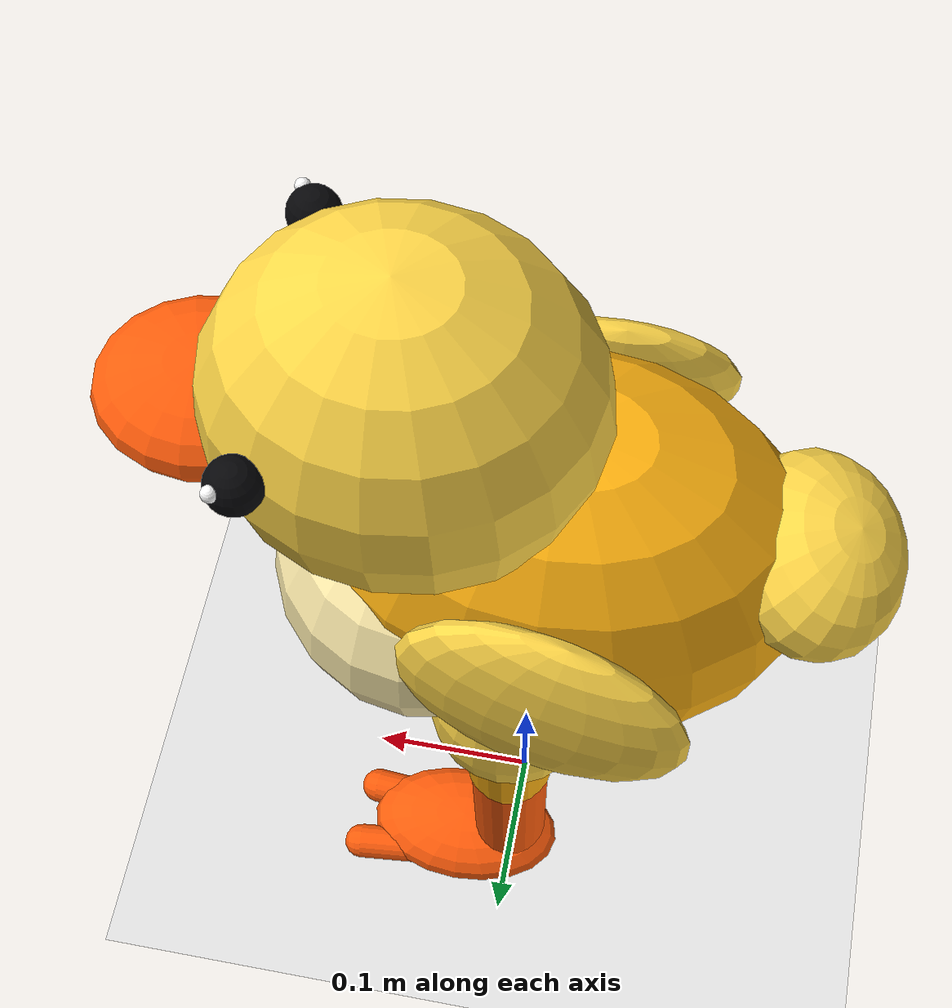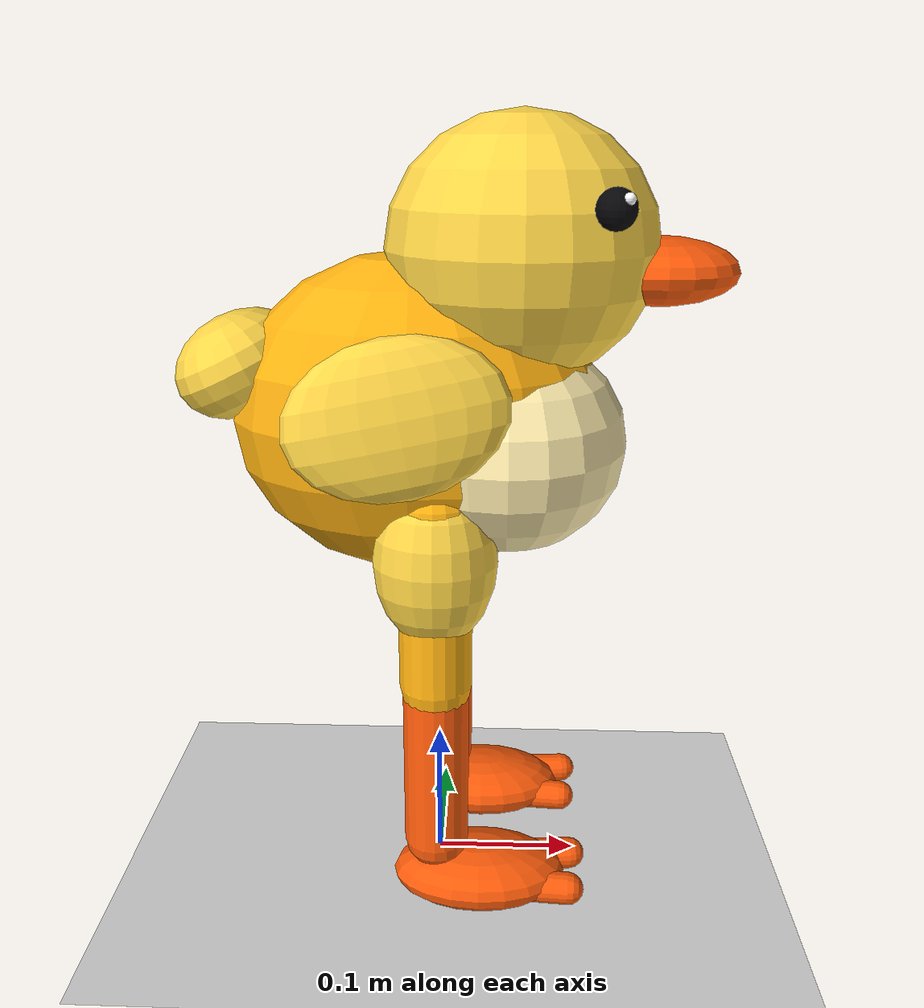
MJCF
<mujoco model="mini_duck_lite_v0_1">
  <compiler angle="radian" autolimits="true" inertiafromgeom="true"/>
  <option timestep="0.002" gravity="0 0 -9.81" integrator="implicitfast" cone="elliptic"/>

  <visual>
    <global azimuth="130" elevation="-16" offwidth="960" offheight="720"/>
    <quality shadowsize="4096"/>
    <headlight ambient="0.45 0.45 0.45" diffuse="0.65 0.65 0.65" specular="0.15 0.15 0.15"/>
    <rgba haze="0.85 0.90 0.96 1"/>
  </visual>

  <default>
    <joint type="hinge" limited="true" damping="0.25" armature="0.002"/>
    <geom condim="3" friction="0.9 0.03 0.001" solref="0.004 1"/>
    <position ctrllimited="true" forcelimited="true" forcerange="-4 4" kp="35" kv="2.5"/>
  </default>

  <asset>
    <texture name="sky_tex" type="skybox" builtin="gradient" width="512" height="3072" rgb1="0.72 0.86 0.98" rgb2="0.97 0.98 1.00"/>
    <texture name="floor_tex" type="2d" builtin="checker" width="256" height="256" rgb1="0.82 0.82 0.82" rgb2="0.94 0.94 0.94"/>
    <material name="floor_mat" texture="floor_tex" texrepeat="6 6" reflectance="0.01"/>
    <material name="duck_yellow" rgba="1.00 0.70 0.06 1"/>
    <material name="duck_light" rgba="1.00 0.84 0.28 1"/>
    <material name="belly_cream" rgba="1.00 0.93 0.68 1"/>
    <material name="joint_dark" rgba="0.20 0.22 0.25 1"/>
    <material name="foot_orange" rgba="1.00 0.36 0.04 1"/>
    <material name="eye_black" rgba="0.025 0.025 0.035 1"/>
    <material name="eye_highlight" rgba="1 1 1 1"/>
  </asset>

  <worldbody>
    <light name="key" pos="1 -1 2" dir="-1 1 -2" directional="true" diffuse="0.85 0.82 0.76" castshadow="true"/>
    <geom name="floor" type="plane" size="3 3 0.05" material="floor_mat"/>
    <camera name="overview" mode="fixed" pos="0.72 -0.81 0.50" xyaxes="0.74 0.67 0 -0.23 0.25 0.94"/>

    <body name="base" pos="0 0 0.34">
      <freejoint name="root"/>
      <geom name="body_shell" type="ellipsoid" pos="-0.015 0 0" size="0.12 0.086 0.105" mass="0.28" material="duck_yellow"/>
      <geom name="belly" type="ellipsoid" pos="0.045 0 -0.018" size="0.078 0.087 0.072" mass="0.025" material="belly_cream" contype="0" conaffinity="0"/>
      <geom name="head" type="ellipsoid" pos="0.052 0 0.105" size="0.086 0.078 0.082" mass="0.075" material="duck_light"/>
      <geom name="beak" type="ellipsoid" pos="0.137 0 0.092" size="0.050 0.044 0.021" mass="0.018" material="foot_orange"/>
      <geom name="left_eye" type="sphere" pos="0.102 0.064 0.133" size="0.012" mass="0.001" material="eye_black" contype="0" conaffinity="0"/>
      <geom name="right_eye" type="sphere" pos="0.102 -0.064 0.133" size="0.012" mass="0.001" material="eye_black" contype="0" conaffinity="0"/>
      <geom name="left_eye_highlight" type="sphere" pos="0.108 0.072 0.139" size="0.0035" mass="0.0001" material="eye_highlight" contype="0" conaffinity="0"/>
      <geom name="right_eye_highlight" type="sphere" pos="0.108 -0.072 0.139" size="0.0035" mass="0.0001" material="eye_highlight" contype="0" conaffinity="0"/>
      <geom name="left_wing" type="ellipsoid" pos="-0.020 0.086 0.018" euler="0.15 -0.20 -0.12" size="0.068 0.017 0.048" mass="0.014" material="duck_light" contype="0" conaffinity="0"/>
      <geom name="right_wing" type="ellipsoid" pos="-0.020 -0.086 0.018" euler="-0.15 -0.20 0.12" size="0.068 0.017 0.048" mass="0.014" material="duck_light" contype="0" conaffinity="0"/>
      <geom name="tail" type="ellipsoid" pos="-0.128 0 0.032" euler="0 -0.45 0" size="0.044 0.050 0.033" mass="0.014" material="duck_light" contype="0" conaffinity="0"/>
      <site name="imu" pos="0 0 0.025" size="0.008" rgba="0.1 0.6 1 1"/>

      <body name="left_hip_yaw_link" pos="0 0.055 -0.05">
        <joint name="left_hip_yaw" axis="0 0 1" range="-0.60 0.60"/>
        <geom type="sphere" size="0.028" mass="0.018" material="duck_yellow"/>
        <body name="left_hip_roll_link">
          <joint name="left_hip_roll" axis="1 0 0" range="-0.45 0.45"/>
          <geom type="sphere" size="0.026" mass="0.016" material="duck_yellow"/>
          <body name="left_upper_leg">
            <joint name="left_hip_pitch" axis="0 1 0" range="-1.00 0.80"/>
            <geom type="ellipsoid" pos="0 0 -0.032" size="0.040 0.036 0.058" mass="0.001" material="duck_light" contype="0" conaffinity="0"/>
            <geom type="capsule" fromto="0 0 0 0 0 -0.12" size="0.024" mass="0.085" material="duck_yellow"/>
            <body name="left_lower_leg" pos="0 0 -0.12">
              <joint name="left_knee_pitch" axis="0 1 0" range="-0.10 1.45"/>
              <geom type="capsule" fromto="0 0 0 0 0 -0.12" size="0.022" mass="0.075" material="foot_orange"/>
              <body name="left_foot" pos="0 0 -0.12">
                <joint name="left_ankle_pitch" axis="0 1 0" range="-0.70 0.70"/>
                <geom name="left_foot_geom" type="box" pos="0.035 0 -0.025" size="0.065 0.038 0.025" mass="0.045" rgba="0 0 0 0"/>
                <geom name="left_foot_palm" type="ellipsoid" pos="0.030 0 -0.028" size="0.060 0.037 0.022" mass="0.008" material="foot_orange" contype="0" conaffinity="0"/>
                <geom name="left_toe_outer" type="capsule" fromto="0.040 0.018 -0.031 0.095 0.023 -0.031" size="0.011" mass="0.001" material="foot_orange" contype="0" conaffinity="0"/>
                <geom name="left_toe_inner" type="capsule" fromto="0.040 -0.012 -0.031 0.092 -0.016 -0.031" size="0.011" mass="0.001" material="foot_orange" contype="0" conaffinity="0"/>
                <site name="left_foot_site" type="box" pos="0.035 0 -0.050" size="0.060 0.034 0.002" rgba="0 0 0 0"/>
              </body>
            </body>
          </body>
        </body>
      </body>

      <body name="right_hip_yaw_link" pos="0 -0.055 -0.05">
        <joint name="right_hip_yaw" axis="0 0 1" range="-0.60 0.60"/>
        <geom type="sphere" size="0.028" mass="0.018" material="duck_yellow"/>
        <body name="right_hip_roll_link">
          <joint name="right_hip_roll" axis="1 0 0" range="-0.45 0.45"/>
          <geom type="sphere" size="0.026" mass="0.016" material="duck_yellow"/>
          <body name="right_upper_leg">
            <joint name="right_hip_pitch" axis="0 1 0" range="-1.00 0.80"/>
            <geom type="ellipsoid" pos="0 0 -0.032" size="0.040 0.036 0.058" mass="0.001" material="duck_light" contype="0" conaffinity="0"/>
            <geom type="capsule" fromto="0 0 0 0 0 -0.12" size="0.024" mass="0.085" material="duck_yellow"/>
            <body name="right_lower_leg" pos="0 0 -0.12">
              <joint name="right_knee_pitch" axis="0 1 0" range="-0.10 1.45"/>
              <geom type="capsule" fromto="0 0 0 0 0 -0.12" size="0.022" mass="0.075" material="foot_orange"/>
              <body name="right_foot" pos="0 0 -0.12">
                <joint name="right_ankle_pitch" axis="0 1 0" range="-0.70 0.70"/>
                <geom name="right_foot_geom" type="box" pos="0.035 0 -0.025" size="0.065 0.038 0.025" mass="0.045" rgba="0 0 0 0"/>
                <geom name="right_foot_palm" type="ellipsoid" pos="0.030 0 -0.028" size="0.060 0.037 0.022" mass="0.008" material="foot_orange" contype="0" conaffinity="0"/>
                <geom name="right_toe_outer" type="capsule" fromto="0.040 0.018 -0.031 0.095 0.023 -0.031" size="0.011" mass="0.001" material="foot_orange" contype="0" conaffinity="0"/>
                <geom name="right_toe_inner" type="capsule" fromto="0.040 -0.012 -0.031 0.092 -0.016 -0.031" size="0.011" mass="0.001" material="foot_orange" contype="0" conaffinity="0"/>
                <site name="right_foot_site" type="box" pos="0.035 0 -0.050" size="0.060 0.034 0.002" rgba="0 0 0 0"/>
              </body>
            </body>
          </body>
        </body>
      </body>
    </body>
  </worldbody>

  <equality>
    <weld name="debug_tether" body1="base" active="false"/>
  </equality>

  <actuator>
    <position name="left_hip_yaw_act" joint="left_hip_yaw" ctrlrange="-0.60 0.60"/>
    <position name="left_hip_roll_act" joint="left_hip_roll" ctrlrange="-0.45 0.45"/>
    <position name="left_hip_pitch_act" joint="left_hip_pitch" ctrlrange="-1.00 0.80"/>
    <position name="left_knee_pitch_act" joint="left_knee_pitch" ctrlrange="-0.10 1.45"/>
    <position name="left_ankle_pitch_act" joint="left_ankle_pitch" ctrlrange="-0.70 0.70"/>
    <position name="right_hip_yaw_act" joint="right_hip_yaw" ctrlrange="-0.60 0.60"/>
    <position name="right_hip_roll_act" joint="right_hip_roll" ctrlrange="-0.45 0.45"/>
    <position name="right_hip_pitch_act" joint="right_hip_pitch" ctrlrange="-1.00 0.80"/>
    <position name="right_knee_pitch_act" joint="right_knee_pitch" ctrlrange="-0.10 1.45"/>
    <position name="right_ankle_pitch_act" joint="right_ankle_pitch" ctrlrange="-0.70 0.70"/>
  </actuator>

  <sensor>
    <gyro name="imu_gyro" site="imu"/>
    <accelerometer name="imu_accelerometer" site="imu"/>
    <framequat name="imu_orientation" objtype="site" objname="imu"/>
    <touch name="left_foot_contact" site="left_foot_site"/>
    <touch name="right_foot_contact" site="right_foot_site"/>
  </sensor>
</mujoco>
